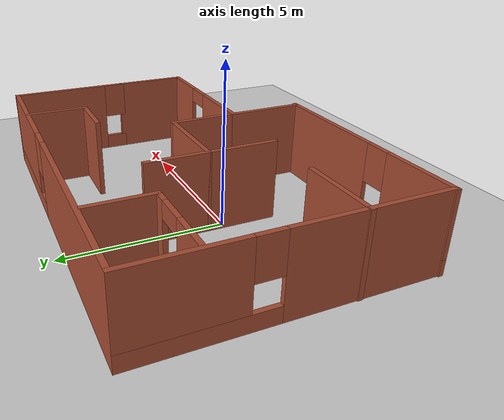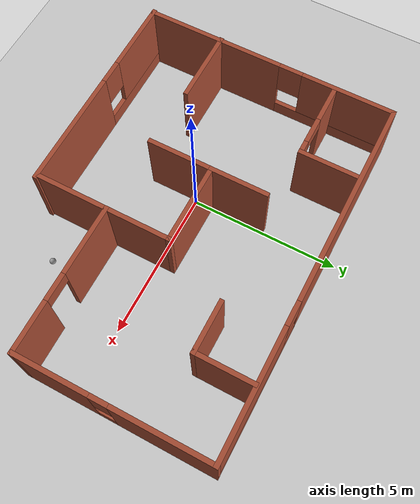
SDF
<sdf version="1.6">
 <world name="default">
  <light name="sun" type="directional">
   <pose>0 0 10 0 -0 0</pose>
   <diffuse>0.8 0.8 0.8 1</diffuse>
   <specular>0.2 0.2 0.2 1</specular>
   <attenuation>
    <range>1000</range>
    <constant>0.9</constant>
    <linear>0.01</linear>
    <quadratic>0.001</quadratic>
   </attenuation>
   <direction>-0.5 0.1 -0.9</direction>
  </light>
  <model name="ground_plane">
   <static>1</static>
   <link name="link">
    <collision name="collision">
     <geometry><plane><normal>0 0 1</normal><size>100 100</size></plane></geometry>
     <surface><friction><ode><mu>100</mu><mu2>50</mu2></ode></friction></surface>
    </collision>
    <visual name="visual">
     <cast_shadows>0</cast_shadows>
     <geometry><plane><normal>0 0 1</normal><size>100 100</size></plane></geometry>
     <material>
      <script><uri>file://media/materials/scripts/gazebo.material</uri><name>Gazebo/Grey</name></script>
     </material>
    </visual>
   </link>
  </model>
  <gravity>0 0 -9.8</gravity>
  <magnetic_field>6e-06 2.3e-05 -4.2e-05</magnetic_field>
  <atmosphere type="adiabatic"/>
  <physics name="default_physics" default="0" type="ode">
   <max_step_size>0.001</max_step_size>
   <real_time_factor>1</real_time_factor>
   <real_time_update_rate>1000</real_time_update_rate>
  </physics>
  <scene><ambient>0.4 0.4 0.4 1</ambient><background>0.7 0.7 0.7 1</background><shadows>1</shadows></scene>
  <spherical_coordinates>
   <surface_model>EARTH_WGS84</surface_model>
   <latitude_deg>0</latitude_deg>
   <longitude_deg>0</longitude_deg>
   <elevation>0</elevation>
   <heading_deg>0</heading_deg>
  </spherical_coordinates>
  <model name="house">
   <pose>1.37662 0.319324 0 0 -0 0</pose>
   <link name="Wall_0">
    <pose>-5.90662 0.010676 0 0 -0 1.5708</pose>
    <visual name="Wall_0_Visual_0">
     <pose>-1.99949 0 1.25 0 -0 0</pose>
     <geometry><box><size>4.75103 0.15 2.5</size></box></geometry>
     <material>
      <script><uri>file://media/materials/scripts/gazebo.material</uri><name>Gazebo/Bricks</name></script>
      <ambient>1 1 1 1</ambient>
     </material>
     <meta><layer>0</layer></meta>
    </visual>
    <collision name="Wall_0_Collision_0">
     <geometry><box><size>4.75103 0.15 2.5</size></box></geometry>
     <pose>-1.99949 0 1.25 0 -0 0</pose>
    </collision>
    <visual name="Wall_0_Visual_1">
     <pose>2.37551 0 0.25 0 -0 0</pose>
     <geometry><box><size>3.99898 0.15 0.5</size></box></geometry>
     <material>
      <script><uri>file://media/materials/scripts/gazebo.material</uri><name>Gazebo/Bricks</name></script>
      <ambient>1 1 1 1</ambient>
     </material>
     <meta><layer>0</layer></meta>
    </visual>
    <collision name="Wall_0_Collision_1">
     <geometry><box><size>3.99898 0.15 0.5</size></box></geometry>
     <pose>2.37551 0 0.25 0 -0 0</pose>
    </collision>
    <visual name="Wall_0_Visual_2">
     <pose>2.77551 0 1.5 0 -0 0</pose>
     <geometry><box><size>3.19897 0.15 2</size></box></geometry>
     <material>
      <script><uri>file://media/materials/scripts/gazebo.material</uri><name>Gazebo/Bricks</name></script>
      <ambient>1 1 1 1</ambient>
     </material>
     <meta><layer>0</layer></meta>
    </visual>
    <collision name="Wall_0_Collision_2">
     <geometry><box><size>3.19897 0.15 2</size></box></geometry>
     <pose>2.77551 0 1.5 0 -0 0</pose>
    </collision>
    <visual name="Wall_0_Visual_3">
     <pose>0.776025 0 1.9 0 -0 0</pose>
     <geometry><box><size>0.8 0.15 1.2</size></box></geometry>
     <material>
      <script><uri>file://media/materials/scripts/gazebo.material</uri><name>Gazebo/Bricks</name></script>
      <ambient>1 1 1 1</ambient>
     </material>
     <meta><layer>0</layer></meta>
    </visual>
    <collision name="Wall_0_Collision_3">
     <geometry><box><size>0.8 0.15 1.2</size></box></geometry>
     <pose>0.776025 0 1.9 0 -0 0</pose>
    </collision>
   </link>
   <link name="Wall_1">
    <pose>0.018384 4.31068 0 0 -0 0</pose>
    <visual name="Wall_1_Visual_0">
     <pose>-2.48582 0 1.25 0 -0 0</pose>
     <geometry><box><size>7.02836 0.15 2.5</size></box></geometry>
     <material>
      <script><uri>file://media/materials/scripts/gazebo.material</uri><name>Gazebo/Bricks</name></script>
      <ambient>1 1 1 1</ambient>
     </material>
     <meta><layer>0</layer></meta>
    </visual>
    <collision name="Wall_1_Collision_0">
     <geometry><box><size>7.02836 0.15 2.5</size></box></geometry>
     <pose>-2.48582 0 1.25 0 -0 0</pose>
    </collision>
    <visual name="Wall_1_Visual_1">
     <pose>3.51418 0 0.25 0 -0 0</pose>
     <geometry><box><size>4.97164 0.15 0.5</size></box></geometry>
     <material>
      <script><uri>file://media/materials/scripts/gazebo.material</uri><name>Gazebo/Bricks</name></script>
      <ambient>1 1 1 1</ambient>
     </material>
     <meta><layer>0</layer></meta>
    </visual>
    <collision name="Wall_1_Collision_1">
     <geometry><box><size>4.97164 0.15 0.5</size></box></geometry>
     <pose>3.51418 0 0.25 0 -0 0</pose>
    </collision>
    <visual name="Wall_1_Visual_2">
     <pose>3.91418 0 1.5 0 -0 0</pose>
     <geometry><box><size>4.17164 0.15 2</size></box></geometry>
     <material>
      <script><uri>file://media/materials/scripts/gazebo.material</uri><name>Gazebo/Bricks</name></script>
      <ambient>1 1 1 1</ambient>
     </material>
     <meta><layer>0</layer></meta>
    </visual>
    <collision name="Wall_1_Collision_2">
     <geometry><box><size>4.17164 0.15 2</size></box></geometry>
     <pose>3.91418 0 1.5 0 -0 0</pose>
    </collision>
    <visual name="Wall_1_Visual_3">
     <pose>1.42836 0 1.9 0 -0 0</pose>
     <geometry><box><size>0.8 0.15 1.2</size></box></geometry>
     <material>
      <script><uri>file://media/materials/scripts/gazebo.material</uri><name>Gazebo/Bricks</name></script>
      <ambient>1 1 1 1</ambient>
     </material>
     <meta><layer>0</layer></meta>
    </visual>
    <collision name="Wall_1_Collision_3">
     <geometry><box><size>0.8 0.15 1.2</size></box></geometry>
     <pose>1.42836 0 1.9 0 -0 0</pose>
    </collision>
   </link>
   <link name="Wall_11">
    <collision name="Wall_11_Collision">
     <geometry><box><size>2.5 0.15 2.5</size></box></geometry>
     <pose>0 0 1.25 0 -0 0</pose>
    </collision>
    <visual name="Wall_11_Visual">
     <pose>0 0 1.25 0 -0 0</pose>
     <geometry><box><size>2.5 0.15 2.5</size></box></geometry>
     <material>
      <script><uri>file://media/materials/scripts/gazebo.material</uri><name>Gazebo/Bricks</name></script>
      <ambient>1 1 1 1</ambient>
     </material>
     <meta><layer>0</layer></meta>
    </visual>
    <pose>5.94338 -0.714324 0 0 0 -1.5708</pose>
   </link>
   <link name="Wall_12">
    <pose>3.51838 -1.88932 0 0 -0 3.14159</pose>
    <visual name="Wall_12_Visual_0">
     <pose>-1.63267 0 1.25 0 -0 0</pose>
     <geometry><box><size>1.73467 0.15 2.5</size></box></geometry>
     <material>
      <script><uri>file://media/materials/scripts/gazebo.material</uri><name>Gazebo/Bricks</name></script>
      <ambient>1 1 1 1</ambient>
     </material>
     <meta><layer>0</layer></meta>
    </visual>
    <collision name="Wall_12_Collision_0">
     <geometry><box><size>1.73467 0.15 2.5</size></box></geometry>
     <pose>-1.63267 0 1.25 0 -0 0</pose>
    </collision>
    <visual name="Wall_12_Visual_1">
     <pose>1.31733 0 1.25 0 -0 0</pose>
     <geometry><box><size>2.36533 0.15 2.5</size></box></geometry>
     <material>
      <script><uri>file://media/materials/scripts/gazebo.material</uri><name>Gazebo/Bricks</name></script>
      <ambient>1 1 1 1</ambient>
     </material>
     <meta><layer>0</layer></meta>
    </visual>
    <collision name="Wall_12_Collision_1">
     <geometry><box><size>2.36533 0.15 2.5</size></box></geometry>
     <pose>1.31733 0 1.25 0 -0 0</pose>
    </collision>
    <visual name="Wall_12_Visual_2">
     <pose>-0.31533 0 2.25 0 -0 0</pose>
     <geometry><box><size>0.9 0.15 0.5</size></box></geometry>
     <material>
      <script><uri>file://media/materials/scripts/gazebo.material</uri><name>Gazebo/Bricks</name></script>
      <ambient>1 1 1 1</ambient>
     </material>
     <meta><layer>0</layer></meta>
    </visual>
    <collision name="Wall_12_Collision_2">
     <geometry><box><size>0.9 0.15 0.5</size></box></geometry>
     <pose>-0.31533 0 2.25 0 -0 0</pose>
    </collision>
   </link>
   <link name="Wall_13">
    <collision name="Wall_13_Collision">
     <geometry><box><size>2.5 0.15 2.5</size></box></geometry>
     <pose>0 0 1.25 0 -0 0</pose>
    </collision>
    <visual name="Wall_13_Visual">
     <pose>0 0 1.25 0 -0 0</pose>
     <geometry><box><size>2.5 0.15 2.5</size></box></geometry>
     <material>
      <script><uri>file://media/materials/scripts/gazebo.material</uri><name>Gazebo/Bricks</name></script>
      <ambient>1 1 1 1</ambient>
     </material>
     <meta><layer>0</layer></meta>
    </visual>
    <pose>1.09338 -3.06432 0 0 0 -1.5708</pose>
   </link>
   <link name="Wall_16">
    <collision name="Wall_16_Collision">
     <geometry><box><size>2.25 0.15 2.5</size></box></geometry>
     <pose>0 0 1.25 0 -0 0</pose>
    </collision>
    <visual name="Wall_16_Visual">
     <pose>0 0 1.25 0 -0 0</pose>
     <geometry><box><size>2.25 0.15 2.5</size></box></geometry>
     <material>
      <script><uri>file://media/materials/scripts/gazebo.material</uri><name>Gazebo/Bricks</name></script>
      <ambient>1 1 1 1</ambient>
     </material>
     <meta><layer>0</layer></meta>
    </visual>
    <pose>1.09338 -0.839324 0 0 -0 1.5708</pose>
   </link>
   <link name="Wall_17">
    <collision name="Wall_17_Collision">
     <geometry><box><size>2.75 0.15 2.5</size></box></geometry>
     <pose>0 0 1.25 0 -0 0</pose>
    </collision>
    <visual name="Wall_17_Visual">
     <pose>0 0 1.25 0 -0 0</pose>
     <geometry><box><size>2.75 0.15 2.5</size></box></geometry>
     <material>
      <script><uri>file://media/materials/scripts/gazebo.material</uri><name>Gazebo/Bricks</name></script>
      <ambient>1 1 1 1</ambient>
     </material>
     <meta><layer>0</layer></meta>
    </visual>
    <pose>-0.206617 0.210676 0 0 -0 3.14159</pose>
   </link>
   <link name="Wall_18">
    <collision name="Wall_18_Collision">
     <geometry><box><size>2 0.15 2.5</size></box></geometry>
     <pose>0 0 1.25 0 -0 0</pose>
    </collision>
    <visual name="Wall_18_Visual">
     <pose>0 0 1.25 0 -0 0</pose>
     <geometry><box><size>2 0.15 2.5</size></box></geometry>
     <material>
      <script><uri>file://media/materials/scripts/gazebo.material</uri><name>Gazebo/Bricks</name></script>
      <ambient>1 1 1 1</ambient>
     </material>
     <meta><layer>0</layer></meta>
    </visual>
    <pose>-1.50662 1.13568 0 0 -0 1.5708</pose>
   </link>
   <link name="Wall_2">
    <pose>5.94338 2.38568 0 0 0 -1.5708</pose>
    <visual name="Wall_2_Visual_0">
     <pose>-0.370496 0 1.25 0 -0 0</pose>
     <geometry><box><size>3.25901 0.15 2.5</size></box></geometry>
     <material>
      <script><uri>file://media/materials/scripts/gazebo.material</uri><name>Gazebo/Bricks</name></script>
      <ambient>1 1 1 1</ambient>
     </material>
     <meta><layer>0</layer></meta>
    </visual>
    <collision name="Wall_2_Collision_0">
     <geometry><box><size>3.25901 0.15 2.5</size></box></geometry>
     <pose>-0.370496 0 1.25 0 -0 0</pose>
    </collision>
    <visual name="Wall_2_Visual_1">
     <pose>1.6295 0 0.25 0 -0 0</pose>
     <geometry><box><size>0.740992 0.15 0.5</size></box></geometry>
     <material>
      <script><uri>file://media/materials/scripts/gazebo.material</uri><name>Gazebo/Bricks</name></script>
      <ambient>1 1 1 1</ambient>
     </material>
     <meta><layer>0</layer></meta>
    </visual>
    <collision name="Wall_2_Collision_1">
     <geometry><box><size>0.740992 0.15 0.5</size></box></geometry>
     <pose>1.6295 0 0.25 0 -0 0</pose>
    </collision>
    <visual name="Wall_2_Visual_2">
     <pose>1.6295 0 1.9 0 -0 0</pose>
     <geometry><box><size>0.740992 0.15 1.2</size></box></geometry>
     <material>
      <script><uri>file://media/materials/scripts/gazebo.material</uri><name>Gazebo/Bricks</name></script>
      <ambient>1 1 1 1</ambient>
     </material>
     <meta><layer>0</layer></meta>
    </visual>
    <collision name="Wall_2_Collision_2">
     <geometry><box><size>0.740992 0.15 1.2</size></box></geometry>
     <pose>1.6295 0 1.9 0 -0 0</pose>
    </collision>
   </link>
   <link name="Wall_20">
    <collision name="Wall_20_Collision">
     <geometry><box><size>2.5 0.15 2.5</size></box></geometry>
     <pose>0 0 1.25 0 -0 0</pose>
    </collision>
    <visual name="Wall_20_Visual">
     <pose>0 0 1.25 0 -0 0</pose>
     <geometry><box><size>2.5 0.15 2.5</size></box></geometry>
     <material>
      <script><uri>file://media/materials/scripts/gazebo.material</uri><name>Gazebo/Bricks</name></script>
      <ambient>1 1 1 1</ambient>
     </material>
     <meta><layer>0</layer></meta>
    </visual>
    <pose>-4.76044 -1.77634 0 0 -0 0</pose>
   </link>
   <link name="Wall_22">
    <collision name="Wall_22_Collision">
     <geometry><box><size>2.25 0.15 2.5</size></box></geometry>
     <pose>0 0 1.25 0 -0 0</pose>
    </collision>
    <visual name="Wall_22_Visual">
     <pose>0 0 1.25 0 -0 0</pose>
     <geometry><box><size>2.25 0.15 2.5</size></box></geometry>
     <material>
      <script><uri>file://media/materials/scripts/gazebo.material</uri><name>Gazebo/Bricks</name></script>
      <ambient>1 1 1 1</ambient>
     </material>
     <meta><layer>0</layer></meta>
    </visual>
    <pose>-1.50662 -0.839324 0 0 0 -1.5708</pose>
   </link>
   <link name="Wall_24">
    <collision name="Wall_24_Collision">
     <geometry><box><size>2 0.15 2.5</size></box></geometry>
     <pose>0 0 1.25 0 -0 0</pose>
    </collision>
    <visual name="Wall_24_Visual">
     <pose>0 0 1.25 0 -0 0</pose>
     <geometry><box><size>2 0.15 2.5</size></box></geometry>
     <material>
      <script><uri>file://media/materials/scripts/gazebo.material</uri><name>Gazebo/Bricks</name></script>
      <ambient>1 1 1 1</ambient>
     </material>
     <meta><layer>0</layer></meta>
    </visual>
    <pose>3.66723 3.33691 0 0 0 -1.5708</pose>
   </link>
   <link name="Wall_25">
    <collision name="Wall_25_Collision">
     <geometry><box><size>1.75 0.15 2.5</size></box></geometry>
     <pose>0 0 1.25 0 -0 0</pose>
    </collision>
    <visual name="Wall_25_Visual">
     <pose>0 0 1.25 0 -0 0</pose>
     <geometry><box><size>1.75 0.15 2.5</size></box></geometry>
     <material>
      <script><uri>file://media/materials/scripts/gazebo.material</uri><name>Gazebo/Bricks</name></script>
      <ambient>1 1 1 1</ambient>
     </material>
     <meta><layer>0</layer></meta>
    </visual>
    <pose>2.86723 2.41191 0 0 -0 3.14159</pose>
   </link>
   <link name="Wall_27">
    <pose>-4.59374 2.33379 0 0 -0 0</pose>
    <visual name="Wall_27_Visual_0">
     <pose>-0.691228 0 1.25 0 -0 0</pose>
     <geometry><box><size>1.36754 0.15 2.5</size></box></geometry>
     <material>
      <script><uri>file://media/materials/scripts/gazebo.material</uri><name>Gazebo/Bricks</name></script>
      <ambient>1 1 1 1</ambient>
     </material>
     <meta><layer>0</layer></meta>
    </visual>
    <collision name="Wall_27_Collision_0">
     <geometry><box><size>1.36754 0.15 2.5</size></box></geometry>
     <pose>-0.691228 0 1.25 0 -0 0</pose>
    </collision>
    <visual name="Wall_27_Visual_1">
     <pose>1.13377 0 1.25 0 -0 0</pose>
     <geometry><box><size>0.482457 0.15 2.5</size></box></geometry>
     <material>
      <script><uri>file://media/materials/scripts/gazebo.material</uri><name>Gazebo/Bricks</name></script>
      <ambient>1 1 1 1</ambient>
     </material>
     <meta><layer>0</layer></meta>
    </visual>
    <collision name="Wall_27_Collision_1">
     <geometry><box><size>0.482457 0.15 2.5</size></box></geometry>
     <pose>1.13377 0 1.25 0 -0 0</pose>
    </collision>
    <visual name="Wall_27_Visual_2">
     <pose>0.442543 0 2.25 0 -0 0</pose>
     <geometry><box><size>0.9 0.15 0.5</size></box></geometry>
     <material>
      <script><uri>file://media/materials/scripts/gazebo.material</uri><name>Gazebo/Bricks</name></script>
      <ambient>1 1 1 1</ambient>
     </material>
     <meta><layer>0</layer></meta>
    </visual>
    <collision name="Wall_27_Collision_2">
     <geometry><box><size>0.9 0.15 0.5</size></box></geometry>
     <pose>0.442543 0 2.25 0 -0 0</pose>
    </collision>
   </link>
   <link name="Wall_30">
    <collision name="Wall_30_Collision">
     <geometry><box><size>2 0.15 2.5</size></box></geometry>
     <pose>0 0 1.25 0 -0 0</pose>
    </collision>
    <visual name="Wall_30_Visual">
     <pose>0 0 1.25 0 -0 0</pose>
     <geometry><box><size>2 0.15 2.5</size></box></geometry>
     <material>
      <script><uri>file://media/materials/scripts/gazebo.material</uri><name>Gazebo/Bricks</name></script>
      <ambient>1 1 1 1</ambient>
     </material>
     <meta><layer>0</layer></meta>
    </visual>
    <pose>-3.29374 3.25879 0 0 -0 1.5708</pose>
   </link>
   <link name="Wall_8">
    <pose>-2.39338 -4.31068 0 0 -0 3.14159</pose>
    <visual name="Wall_8_Visual_0">
     <pose>-1.63527 0 1.25 0 -0 0</pose>
     <geometry><box><size>3.97946 0.15 2.5</size></box></geometry>
     <material>
      <script><uri>file://media/materials/scripts/gazebo.material</uri><name>Gazebo/Bricks</name></script>
      <ambient>1 1 1 1</ambient>
     </material>
     <meta><layer>0</layer></meta>
    </visual>
    <collision name="Wall_8_Collision_0">
     <geometry><box><size>3.97946 0.15 2.5</size></box></geometry>
     <pose>-1.63527 0 1.25 0 -0 0</pose>
    </collision>
    <visual name="Wall_8_Visual_1">
     <pose>1.98973 0 0.25 0 -0 0</pose>
     <geometry><box><size>3.27054 0.15 0.5</size></box></geometry>
     <material>
      <script><uri>file://media/materials/scripts/gazebo.material</uri><name>Gazebo/Bricks</name></script>
      <ambient>1 1 1 1</ambient>
     </material>
     <meta><layer>0</layer></meta>
    </visual>
    <collision name="Wall_8_Collision_1">
     <geometry><box><size>3.27054 0.15 0.5</size></box></geometry>
     <pose>1.98973 0 0.25 0 -0 0</pose>
    </collision>
    <visual name="Wall_8_Visual_2">
     <pose>2.38973 0 1.5 0 -0 0</pose>
     <geometry><box><size>2.47054 0.15 2</size></box></geometry>
     <material>
      <script><uri>file://media/materials/scripts/gazebo.material</uri><name>Gazebo/Bricks</name></script>
      <ambient>1 1 1 1</ambient>
     </material>
     <meta><layer>0</layer></meta>
    </visual>
    <collision name="Wall_8_Collision_2">
     <geometry><box><size>2.47054 0.15 2</size></box></geometry>
     <pose>2.38973 0 1.5 0 -0 0</pose>
    </collision>
    <visual name="Wall_8_Visual_3">
     <pose>0.754462 0 1.9 0 -0 0</pose>
     <geometry><box><size>0.8 0.15 1.2</size></box></geometry>
     <material>
      <script><uri>file://media/materials/scripts/gazebo.material</uri><name>Gazebo/Bricks</name></script>
      <ambient>1 1 1 1</ambient>
     </material>
     <meta><layer>0</layer></meta>
    </visual>
    <collision name="Wall_8_Collision_3">
     <geometry><box><size>0.8 0.15 1.2</size></box></geometry>
     <pose>0.754462 0 1.9 0 -0 0</pose>
    </collision>
   </link>
   <static>1</static>
  </model>
  <model name="my_ball">
   <link name="link_0">
    <inertial>
     <mass>1</mass>
     <inertia><ixx>0.1</ixx><ixy>0</ixy><ixz>0</ixz><iyy>0.1</iyy><iyz>0</iyz><izz>0.1</izz></inertia>
    </inertial>
    <visual name="visual">
     <geometry><sphere><radius>0.1</radius></sphere></geometry>
     <material>
      <lighting>1</lighting>
      <script><uri>file://media/materials/scripts/gazebo.material</uri><name>Gazebo/Grey</name></script>
      <shader type="pixel"><normal_map>__default__</normal_map></shader>
      <ambient>1 1 1 1</ambient>
      <diffuse>1 1 1 1</diffuse>
      <specular>1 1 1 1</specular>
      <emissive>1 1 1 1</emissive>
     </material>
    </visual>
    <collision name="collision">
     <geometry><sphere><radius>0.1</radius></sphere></geometry>
     <surface>
      <friction>
       <ode><mu>1</mu><mu2>1</mu2><fdir1>0 0 0</fdir1><slip1>0</slip1><slip2>0</slip2></ode>
       <torsional>
        <coefficient>1</coefficient>
        <patch_radius>0</patch_radius>
        <surface_radius>0</surface_radius>
        <use_patch_radius>1</use_patch_radius>
        <ode><slip>0</slip></ode>
       </torsional>
      </friction>
      <bounce><restitution_coefficient>0</restitution_coefficient><threshold>1e+06</threshold></bounce>
      <contact>
       <collide_without_contact>0</collide_without_contact>
       <collide_without_contact_bitmask>1</collide_without_contact_bitmask>
       <collide_bitmask>1</collide_bitmask>
       <ode>
        <soft_cfm>0</soft_cfm>
        <soft_erp>0.2</soft_erp>
        <kp>1e+13</kp>
        <kd>1</kd>
        <max_vel>0.01</max_vel>
        <min_depth>0</min_depth>
       </ode>
       <bullet>
        <split_impulse>1</split_impulse>
        <split_impulse_penetration_threshold>-0.01</split_impulse_penetration_threshold>
        <soft_cfm>0</soft_cfm>
        <soft_erp>0.2</soft_erp>
        <kp>1e+13</kp>
        <kd>1</kd>
       </bullet>
      </contact>
     </surface>
    </collision>
   </link>
   <static>0</static>
   <pose>4 -3 0.1 0 -0 0</pose>
  </model>
 </world>
</sdf>
